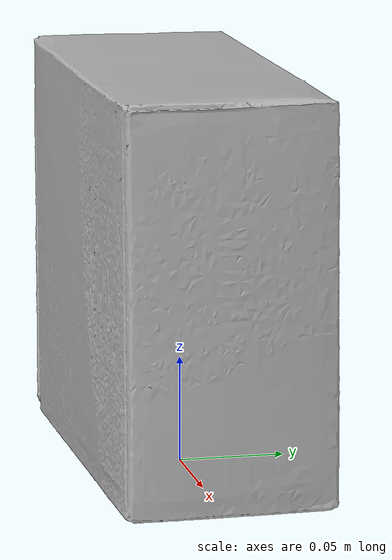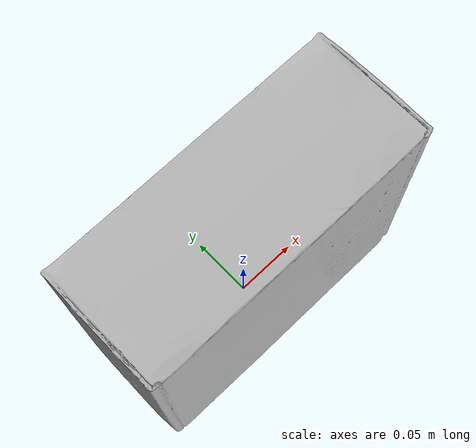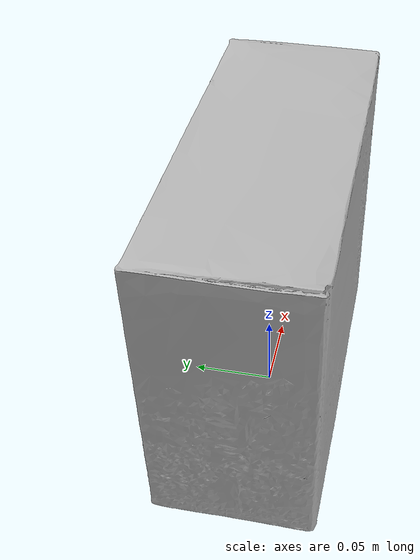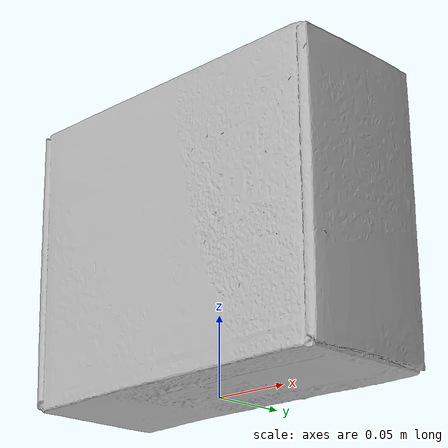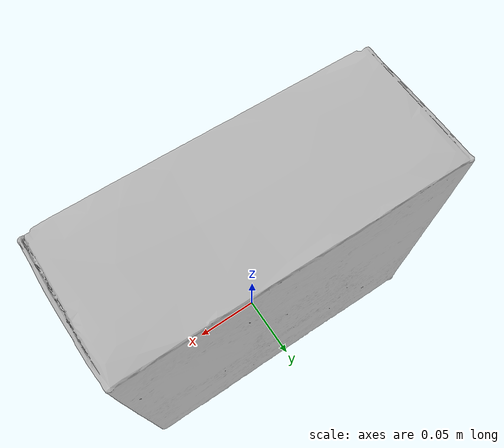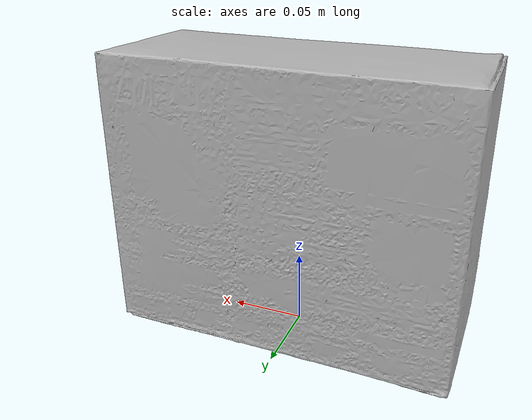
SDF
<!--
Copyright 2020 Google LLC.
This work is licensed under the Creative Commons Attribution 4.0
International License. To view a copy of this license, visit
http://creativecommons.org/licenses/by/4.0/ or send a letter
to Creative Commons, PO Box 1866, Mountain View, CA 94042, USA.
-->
<?xml version="1.0" ?>
<sdf version="1.6">
  <model name="Asus_Z97IPLUS_Motherboard_Mini_ITX_LGA1150_Socket">
    <link name="link_0">
      <visual name="visual">
        <geometry>
          <mesh>
            <uri>meshes/model.obj</uri>
          </mesh>
        </geometry>
      </visual>
      <collision name="collision_0">
        <geometry>
          <mesh>
            <uri>meshes/model.obj</uri>
          </mesh>
        </geometry>
      </collision>
    </link>
  </model>
</sdf>
